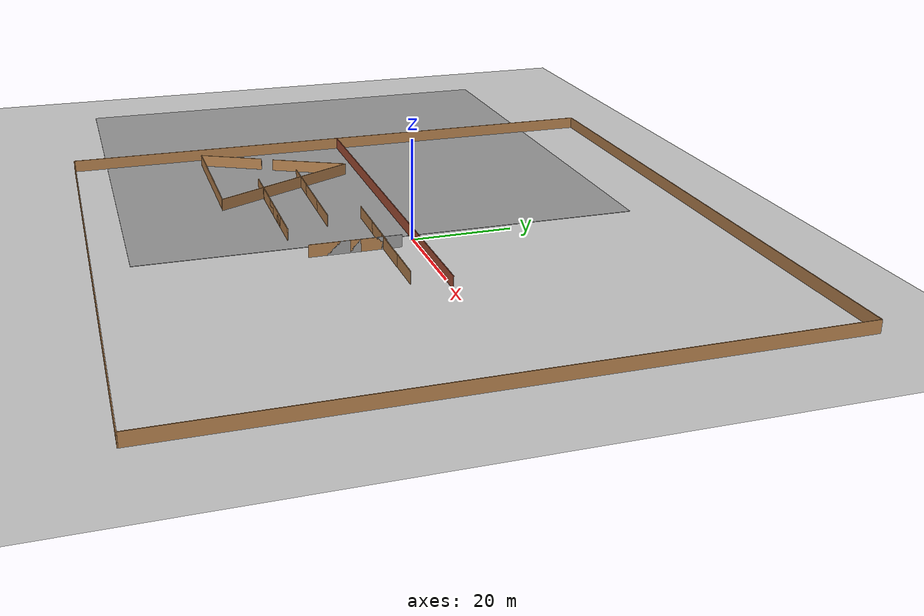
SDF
<sdf version="1.6">
 <world name="default">
  <model name="ground_plane">
   <static>1</static>
   <link name="link">
    <collision name="collision">
     <geometry><plane><normal>0 0 1</normal><size>100 100</size></plane></geometry>
     <surface><friction><ode><mu>100</mu><mu2>50</mu2></ode></friction></surface>
    </collision>
    <visual name="visual">
     <cast_shadows>0</cast_shadows>
     <geometry><plane><normal>0 0 1</normal><size>100 100</size></plane></geometry>
     <material>
      <script><uri>file://media/materials/scripts/gazebo.material</uri><name>Gazebo/Grey</name></script>
     </material>
    </visual>
   </link>
  </model>
  <model name="ground_plane_5">
   <static>1</static>
   <link name="link">
    <collision name="collision">
     <geometry><plane><normal>0 0 1</normal><size>100 100</size></plane></geometry>
     <surface><friction><ode><mu>100</mu><mu2>50</mu2></ode></friction></surface>
    </collision>
    <visual name="visual">
     <cast_shadows>0</cast_shadows>
     <geometry><plane><normal>0 0 1</normal><size>100 100</size></plane></geometry>
     <material>
      <script><uri>file://media/materials/scripts/gazebo.material</uri><name>Gazebo/Grey</name></script>
     </material>
    </visual>
   </link>
   <pose>-52 -3 0 0 -0 0</pose>
  </model>
  <model name="map_final_frame_1">
   <link name="Wall_0">
    <collision name="Wall_0_Collision">
     <geometry><box><size>120.15 0.15 2.5</size></box></geometry>
     <pose>0 0 1.25 0 -0 0</pose>
    </collision>
    <visual name="Wall_0_Visual">
     <pose>0 0 1.25 0 -0 0</pose>
     <geometry><box><size>120.15 0.15 2.5</size></box></geometry>
     <material>
      <script><uri>file://media/materials/scripts/gazebo.material</uri><name>Gazebo/Wood</name></script>
      <ambient>1 1 1 1</ambient>
     </material>
    </visual>
    <pose>0 60 0 0 -0 0</pose>
   </link>
   <link name="Wall_1">
    <collision name="Wall_1_Collision">
     <geometry><box><size>120.15 0.15 2.5</size></box></geometry>
     <pose>0 0 1.25 0 -0 0</pose>
    </collision>
    <visual name="Wall_1_Visual">
     <pose>0 0 1.25 0 -0 0</pose>
     <geometry><box><size>120.15 0.15 2.5</size></box></geometry>
     <material>
      <script><uri>file://media/materials/scripts/gazebo.material</uri><name>Gazebo/Wood</name></script>
      <ambient>1 1 1 1</ambient>
     </material>
    </visual>
    <pose>60 0 0 0 0 -1.5708</pose>
   </link>
   <link name="Wall_2">
    <collision name="Wall_2_Collision">
     <geometry><box><size>120.15 0.15 2.5</size></box></geometry>
     <pose>0 0 1.25 0 -0 0</pose>
    </collision>
    <visual name="Wall_2_Visual">
     <pose>0 0 1.25 0 -0 0</pose>
     <geometry><box><size>120.15 0.15 2.5</size></box></geometry>
     <material>
      <script><uri>file://media/materials/scripts/gazebo.material</uri><name>Gazebo/Wood</name></script>
      <ambient>1 1 1 1</ambient>
     </material>
    </visual>
    <pose>0 -60 0 0 -0 3.14159</pose>
   </link>
   <link name="Wall_3">
    <collision name="Wall_3_Collision">
     <geometry><box><size>120.15 0.15 2.5</size></box></geometry>
     <pose>0 0 1.25 0 -0 0</pose>
    </collision>
    <visual name="Wall_3_Visual">
     <pose>0 0 1.25 0 -0 0</pose>
     <geometry><box><size>120.15 0.15 2.5</size></box></geometry>
     <material>
      <script><uri>file://media/materials/scripts/gazebo.material</uri><name>Gazebo/Wood</name></script>
      <ambient>1 1 1 1</ambient>
     </material>
    </visual>
    <pose>-60 0 0 0 -0 1.5708</pose>
   </link>
   <static>1</static>
  </model>
  <model name="map_final_21">
   <pose>-18 0 0 0 -0 0</pose>
   <link name="Wall_7">
    <collision name="Wall_7_Collision">
     <geometry><box><size>84.15 0.15 2.5</size></box></geometry>
     <pose>0 0 1.25 0 -0 0</pose>
    </collision>
    <visual name="Wall_7_Visual">
     <pose>0 0 1.25 0 -0 0</pose>
     <geometry><box><size>84.15 0.15 2.5</size></box></geometry>
     <material>
      <script><uri>file://media/materials/scripts/gazebo.material</uri><name>Gazebo/Bricks</name></script>
      <ambient>1 1 1 1</ambient>
     </material>
    </visual>
    <pose>0 0 0 0 -0 3.14159</pose>
   </link>
   <static>1</static>
  </model>
  <model name="wall-10m-ofoghi">
   <pose>15 -6.54766 0 0 -0 0</pose>
   <link name="Wall_22">
    <collision name="Wall_22_Collision">
     <geometry><box><size>10 0.15 2.5</size></box></geometry>
     <pose>0 0 1.25 0 -0 0</pose>
    </collision>
    <visual name="Wall_22_Visual">
     <pose>0 0 1.25 0 -0 0</pose>
     <geometry><box><size>10 0.15 2.5</size></box></geometry>
     <material>
      <script><uri>file://media/materials/scripts/gazebo.material</uri><name>Gazebo/Wood</name></script>
      <ambient>1 1 1 1</ambient>
     </material>
    </visual>
   </link>
   <static>1</static>
  </model>
  <model name="wall-10m-ofoghi_0">
   <pose>7 -6.59851 0 0 -0 0</pose>
   <link name="Wall_22">
    <collision name="Wall_22_Collision">
     <geometry><box><size>10 0.15 2.5</size></box></geometry>
     <pose>0 0 1.25 0 -0 0</pose>
    </collision>
    <visual name="Wall_22_Visual">
     <pose>0 0 1.25 0 -0 0</pose>
     <geometry><box><size>10 0.15 2.5</size></box></geometry>
     <material>
      <script><uri>file://media/materials/scripts/gazebo.material</uri><name>Gazebo/Wood</name></script>
      <ambient>1 1 1 1</ambient>
     </material>
    </visual>
   </link>
   <static>1</static>
  </model>
  <model name="wall-10m-ofoghi_1">
   <pose>0 -6.50132 0 0 -0 0</pose>
   <link name="Wall_22">
    <collision name="Wall_22_Collision">
     <geometry><box><size>10 0.15 2.5</size></box></geometry>
     <pose>0 0 1.25 0 -0 0</pose>
    </collision>
    <visual name="Wall_22_Visual">
     <pose>0 0 1.25 0 -0 0</pose>
     <geometry><box><size>10 0.15 2.5</size></box></geometry>
     <material>
      <script><uri>file://media/materials/scripts/gazebo.material</uri><name>Gazebo/Wood</name></script>
      <ambient>1 1 1 1</ambient>
     </material>
    </visual>
   </link>
   <static>1</static>
  </model>
  <model name="wall-10m-ofoghi_2">
   <pose>-9 -6.47267 0 0 -0 0</pose>
   <link name="Wall_22">
    <collision name="Wall_22_Collision">
     <geometry><box><size>10 0.15 2.5</size></box></geometry>
     <pose>0 0 1.25 0 -0 0</pose>
    </collision>
    <visual name="Wall_22_Visual">
     <pose>0 0 1.25 0 -0 0</pose>
     <geometry><box><size>10 0.15 2.5</size></box></geometry>
     <material>
      <script><uri>file://media/materials/scripts/gazebo.material</uri><name>Gazebo/Wood</name></script>
      <ambient>1 1 1 1</ambient>
     </material>
    </visual>
   </link>
   <static>1</static>
  </model>
  <model name="tr_layout_1">
   <pose>-40.956 -17.6326 0 0 -0 0</pose>
   <link name="Wall_0">
    <collision name="Wall_0_Collision">
     <geometry><box><size>30.15 0.15 2.5</size></box></geometry>
     <pose>0 0 1.25 0 -0 0</pose>
    </collision>
    <visual name="Wall_0_Visual">
     <pose>0 0 1.25 0 -0 0</pose>
     <geometry><box><size>30.15 0.15 2.5</size></box></geometry>
     <material>
      <script><uri>file://media/materials/scripts/gazebo.material</uri><name>Gazebo/Wood</name></script>
      <ambient>1 1 1 1</ambient>
     </material>
    </visual>
    <pose>-0.040638 -14.7092 0 0 -0 0</pose>
   </link>
   <link name="Wall_2">
    <collision name="Wall_2_Collision">
     <geometry><box><size>14.059 0.15 2.5</size></box></geometry>
     <pose>0 0 1.25 0 -0 0</pose>
    </collision>
    <visual name="Wall_2_Visual">
     <pose>0 0 1.25 0 -0 0</pose>
     <geometry><box><size>14.059 0.15 2.5</size></box></geometry>
     <material>
      <script><uri>file://media/materials/scripts/gazebo.material</uri><name>Gazebo/Wood</name></script>
      <ambient>1 1 1 1</ambient>
     </material>
    </visual>
    <pose>-11.8706 -8.51916 0 0 -0 1.0975</pose>
   </link>
   <link name="Wall_4">
    <collision name="Wall_4_Collision">
     <geometry><box><size>33.2446 0.15 2.5</size></box></geometry>
     <pose>0 0 1.25 0 -0 0</pose>
    </collision>
    <visual name="Wall_4_Visual">
     <pose>0 0 1.25 0 -0 0</pose>
     <geometry><box><size>33.2446 0.15 2.5</size></box></geometry>
     <material>
      <script><uri>file://media/materials/scripts/gazebo.material</uri><name>Gazebo/Wood</name></script>
      <ambient>1 1 1 1</ambient>
     </material>
    </visual>
    <pose>7.54073 -0.040527 0 0 0 -1.10039</pose>
   </link>
   <link name="Wall_6">
    <collision name="Wall_6_Collision">
     <geometry><box><size>16.6075 0.15 2.5</size></box></geometry>
     <pose>0 0 1.25 0 -0 0</pose>
    </collision>
    <visual name="Wall_6_Visual">
     <pose>0 0 1.25 0 -0 0</pose>
     <geometry><box><size>16.6075 0.15 2.5</size></box></geometry>
     <material>
      <script><uri>file://media/materials/scripts/gazebo.material</uri><name>Gazebo/Wood</name></script>
      <ambient>1 1 1 1</ambient>
     </material>
    </visual>
    <pose>-3.70064 7.42084 0 0 -0 1.10987</pose>
   </link>
   <static>1</static>
  </model>
  <model name="wall-10m-amodi">
   <pose>3 -8 0 0 -0 0</pose>
   <link name="Wall_24">
    <collision name="Wall_24_Collision">
     <geometry><box><size>10 0.15 2.5</size></box></geometry>
     <pose>0 0 1.25 0 -0 0</pose>
    </collision>
    <visual name="Wall_24_Visual">
     <pose>0 0 1.25 0 -0 0</pose>
     <geometry><box><size>10 0.15 2.5</size></box></geometry>
     <material>
      <script><uri>file://media/materials/scripts/gazebo.material</uri><name>Gazebo/Grey</name></script>
      <ambient>1 1 1 1</ambient>
     </material>
    </visual>
    <pose>0 -0 0 0 0 -1.5708</pose>
   </link>
   <link name="Wall_25">
    <collision name="Wall_25_Collision">
     <geometry><box><size>10 0.15 2.5</size></box></geometry>
     <pose>0 0 1.25 0 -0 0</pose>
    </collision>
    <visual name="Wall_25_Visual">
     <pose>0 0 1.25 0 -0 0</pose>
     <geometry><box><size>10 0.15 2.5</size></box></geometry>
     <material>
      <script><uri>file://media/materials/scripts/gazebo.material</uri><name>Gazebo/Wood</name></script>
      <ambient>1 1 1 1</ambient>
     </material>
    </visual>
    <pose>0 -0 0 0 -0 1.5708</pose>
   </link>
   <static>1</static>
  </model>
  <model name="wall-10m-amodi_0">
   <pose>3 -16 0 0 -0 0</pose>
   <link name="Wall_24">
    <collision name="Wall_24_Collision">
     <geometry><box><size>10 0.15 2.5</size></box></geometry>
     <pose>0 0 1.25 0 -0 0</pose>
    </collision>
    <visual name="Wall_24_Visual">
     <pose>0 0 1.25 0 -0 0</pose>
     <geometry><box><size>10 0.15 2.5</size></box></geometry>
     <material>
      <script><uri>file://media/materials/scripts/gazebo.material</uri><name>Gazebo/Grey</name></script>
      <ambient>1 1 1 1</ambient>
     </material>
    </visual>
    <pose>0 -0 0 0 0 -1.5708</pose>
   </link>
   <link name="Wall_25">
    <collision name="Wall_25_Collision">
     <geometry><box><size>10 0.15 2.5</size></box></geometry>
     <pose>0 0 1.25 0 -0 0</pose>
    </collision>
    <visual name="Wall_25_Visual">
     <pose>0 0 1.25 0 -0 0</pose>
     <geometry><box><size>10 0.15 2.5</size></box></geometry>
     <material>
      <script><uri>file://media/materials/scripts/gazebo.material</uri><name>Gazebo/Wood</name></script>
      <ambient>1 1 1 1</ambient>
     </material>
    </visual>
    <pose>0 -0 0 0 -0 1.5708</pose>
   </link>
   <static>1</static>
  </model>
  <model name="wall-10m-ofoghi_3">
   <pose>-25 -14 0 0 -0 0</pose>
   <link name="Wall_22">
    <collision name="Wall_22_Collision">
     <geometry><box><size>10 0.15 2.5</size></box></geometry>
     <pose>0 0 1.25 0 -0 0</pose>
    </collision>
    <visual name="Wall_22_Visual">
     <pose>0 0 1.25 0 -0 0</pose>
     <geometry><box><size>10 0.15 2.5</size></box></geometry>
     <material>
      <script><uri>file://media/materials/scripts/gazebo.material</uri><name>Gazebo/Wood</name></script>
      <ambient>1 1 1 1</ambient>
     </material>
    </visual>
   </link>
   <static>1</static>
  </model>
  <model name="wall-10m-ofoghi_4">
   <pose>-16 -14 0 0 -0 0</pose>
   <link name="Wall_22">
    <collision name="Wall_22_Collision">
     <geometry><box><size>10 0.15 2.5</size></box></geometry>
     <pose>0 0 1.25 0 -0 0</pose>
    </collision>
    <visual name="Wall_22_Visual">
     <pose>0 0 1.25 0 -0 0</pose>
     <geometry><box><size>10 0.15 2.5</size></box></geometry>
     <material>
      <script><uri>file://media/materials/scripts/gazebo.material</uri><name>Gazebo/Wood</name></script>
      <ambient>1 1 1 1</ambient>
     </material>
    </visual>
   </link>
   <static>1</static>
  </model>
  <model name="wall-10m-ofoghi_5">
   <pose>-35 -14 0 0 -0 0</pose>
   <link name="Wall_22">
    <collision name="Wall_22_Collision">
     <geometry><box><size>10 0.15 2.5</size></box></geometry>
     <pose>0 0 1.25 0 -0 0</pose>
    </collision>
    <visual name="Wall_22_Visual">
     <pose>0 0 1.25 0 -0 0</pose>
     <geometry><box><size>10 0.15 2.5</size></box></geometry>
     <material>
      <script><uri>file://media/materials/scripts/gazebo.material</uri><name>Gazebo/Wood</name></script>
      <ambient>1 1 1 1</ambient>
     </material>
    </visual>
   </link>
   <static>1</static>
  </model>
  <model name="wall-10m-ofoghi_6">
   <pose>-31.4121 -23 0 0 -0 0</pose>
   <link name="Wall_22">
    <collision name="Wall_22_Collision">
     <geometry><box><size>10 0.15 2.5</size></box></geometry>
     <pose>0 0 1.25 0 -0 0</pose>
    </collision>
    <visual name="Wall_22_Visual">
     <pose>0 0 1.25 0 -0 0</pose>
     <geometry><box><size>10 0.15 2.5</size></box></geometry>
     <material>
      <script><uri>file://media/materials/scripts/gazebo.material</uri><name>Gazebo/Wood</name></script>
      <ambient>1 1 1 1</ambient>
     </material>
    </visual>
   </link>
   <static>1</static>
  </model>
  <model name="wall-10m-ofoghi_7">
   <pose>-25 -23 0 0 -0 0</pose>
   <link name="Wall_22">
    <collision name="Wall_22_Collision">
     <geometry><box><size>10 0.15 2.5</size></box></geometry>
     <pose>0 0 1.25 0 -0 0</pose>
    </collision>
    <visual name="Wall_22_Visual">
     <pose>0 0 1.25 0 -0 0</pose>
     <geometry><box><size>10 0.15 2.5</size></box></geometry>
     <material>
      <script><uri>file://media/materials/scripts/gazebo.material</uri><name>Gazebo/Wood</name></script>
      <ambient>1 1 1 1</ambient>
     </material>
    </visual>
   </link>
   <static>1</static>
  </model>
  <model name="wall-10m-ofoghi_8">
   <pose>-18 -23 0 0 -0 0</pose>
   <link name="Wall_22">
    <collision name="Wall_22_Collision">
     <geometry><box><size>10 0.15 2.5</size></box></geometry>
     <pose>0 0 1.25 0 -0 0</pose>
    </collision>
    <visual name="Wall_22_Visual">
     <pose>0 0 1.25 0 -0 0</pose>
     <geometry><box><size>10 0.15 2.5</size></box></geometry>
     <material>
      <script><uri>file://media/materials/scripts/gazebo.material</uri><name>Gazebo/Wood</name></script>
      <ambient>1 1 1 1</ambient>
     </material>
    </visual>
   </link>
   <static>1</static>
  </model>
  <model name="wall-10m-ofoghi_9">
   <pose>-11 -23 0 0 -0 0</pose>
   <link name="Wall_22">
    <collision name="Wall_22_Collision">
     <geometry><box><size>10 0.15 2.5</size></box></geometry>
     <pose>0 0 1.25 0 -0 0</pose>
    </collision>
    <visual name="Wall_22_Visual">
     <pose>0 0 1.25 0 -0 0</pose>
     <geometry><box><size>10 0.15 2.5</size></box></geometry>
     <material>
      <script><uri>file://media/materials/scripts/gazebo.material</uri><name>Gazebo/Wood</name></script>
      <ambient>1 1 1 1</ambient>
     </material>
    </visual>
   </link>
   <static>1</static>
  </model>
 </world>
</sdf>
